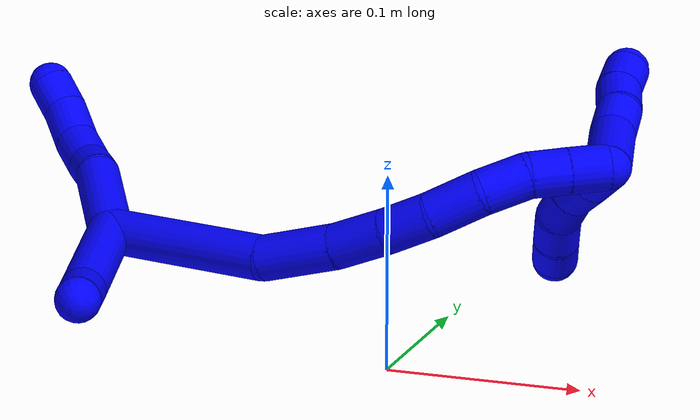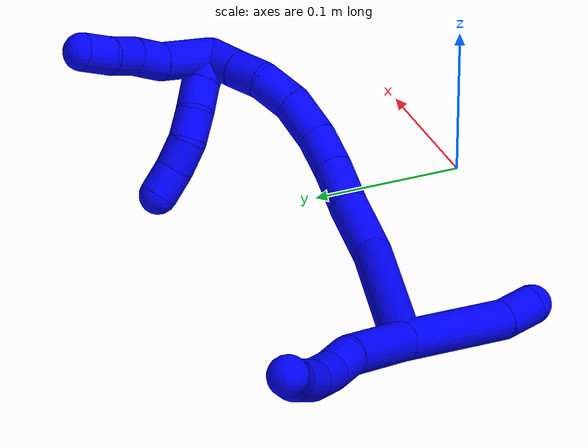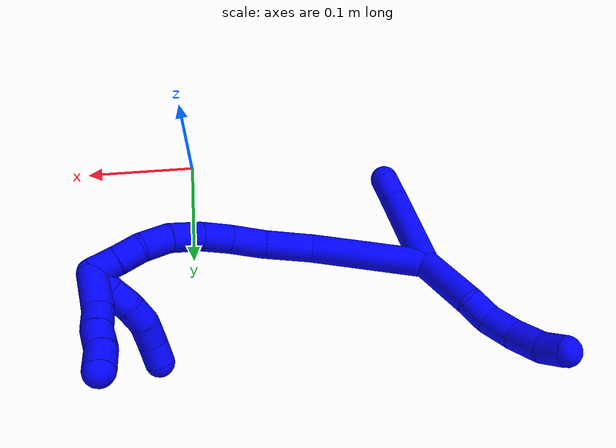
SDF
<sdf version="1.7">
 <world name="default">
  <model name="1">
   <static>0</static>
   <link name="1">
    <collision name="collision-cylinder-e_1_2_8">
     <pose>0.000116 -0.003127 0.028337 0.109904 0.004056 0.000223</pose>
     <geometry><cylinder><radius>0.0125</radius><length>0.057019</length></cylinder></geometry>
     <surface>
      <friction><ode><mu>1.16</mu><mu2>1.16</mu2><slip1>0</slip1><slip2>0</slip2></ode></friction>
      <contact><ode><kp>1e+06</kp><kd>1</kd><max_vel>0</max_vel><min_depth>0.001</min_depth></ode></contact>
     </surface>
    </collision>
    <visual name="visual-cylinder-e_1_2_8">
     <pose>0.000116 -0.003127 0.028337 0.109904 0.004056 0.000223</pose>
     <geometry><cylinder><radius>0.0125</radius><length>0.057019</length></cylinder></geometry>
     <material><ambient>0 0 1 1</ambient></material>
    </visual>
    <collision name="collision-cylinder-e_2_8_9">
     <pose>-0.002248 -0.005548 0.067047 -0.06798 -0.234077 0.007996</pose>
     <geometry><cylinder><radius>0.0125</radius><length>0.021377</length></cylinder></geometry>
     <surface>
      <friction><ode><mu>1.16</mu><mu2>1.16</mu2><slip1>0</slip1><slip2>0</slip2></ode></friction>
      <contact><ode><kp>1e+06</kp><kd>1</kd><max_vel>0</max_vel><min_depth>0.001</min_depth></ode></contact>
     </surface>
    </collision>
    <visual name="visual-cylinder-e_2_8_9">
     <pose>-0.002248 -0.005548 0.067047 -0.06798 -0.234077 0.007996</pose>
     <geometry><cylinder><radius>0.0125</radius><length>0.021377</length></cylinder></geometry>
     <material><ambient>0 0 1 1</ambient></material>
    </visual>
    <collision name="collision-cylinder-e_3_9_10">
     <pose>-0.006372 -0.007578 0.089479 0.223187 -0.132298 -0.014847</pose>
     <geometry><cylinder><radius>0.0125</radius><length>0.024949</length></cylinder></geometry>
     <surface>
      <friction><ode><mu>1.16</mu><mu2>1.16</mu2><slip1>0</slip1><slip2>0</slip2></ode></friction>
      <contact><ode><kp>1e+06</kp><kd>1</kd><max_vel>0</max_vel><min_depth>0.001</min_depth></ode></contact>
     </surface>
    </collision>
    <visual name="visual-cylinder-e_3_9_10">
     <pose>-0.006372 -0.007578 0.089479 0.223187 -0.132298 -0.014847</pose>
     <geometry><cylinder><radius>0.0125</radius><length>0.024949</length></cylinder></geometry>
     <material><ambient>0 0 1 1</ambient></material>
    </visual>
    <collision name="collision-cylinder-e_4_10_11">
     <pose>-0.007749 -0.015319 0.113801 0.387366 0.020342 0.00399</pose>
     <geometry><cylinder><radius>0.0125</radius><length>0.026495</length></cylinder></geometry>
     <surface>
      <friction><ode><mu>1.16</mu><mu2>1.16</mu2><slip1>0</slip1><slip2>0</slip2></ode></friction>
      <contact><ode><kp>1e+06</kp><kd>1</kd><max_vel>0</max_vel><min_depth>0.001</min_depth></ode></contact>
     </surface>
    </collision>
    <visual name="visual-cylinder-e_4_10_11">
     <pose>-0.007749 -0.015319 0.113801 0.387366 0.020342 0.00399</pose>
     <geometry><cylinder><radius>0.0125</radius><length>0.026495</length></cylinder></geometry>
     <material><ambient>0 0 1 1</ambient></material>
    </visual>
    <collision name="collision-cylinder-e_5_11_6">
     <pose>-0.00758 -0.026345 0.134146 0.640467 -0.010012 -0.00332</pose>
     <geometry><cylinder><radius>0.0125</radius><length>0.020161</length></cylinder></geometry>
     <surface>
      <friction><ode><mu>1.16</mu><mu2>1.16</mu2><slip1>0</slip1><slip2>0</slip2></ode></friction>
      <contact><ode><kp>1e+06</kp><kd>1</kd><max_vel>0</max_vel><min_depth>0.001</min_depth></ode></contact>
     </surface>
    </collision>
    <visual name="visual-cylinder-e_5_11_6">
     <pose>-0.00758 -0.026345 0.134146 0.640467 -0.010012 -0.00332</pose>
     <geometry><cylinder><radius>0.0125</radius><length>0.020161</length></cylinder></geometry>
     <material><ambient>0 0 1 1</ambient></material>
    </visual>
    <collision name="collision-cylinder-e_1_2_12">
     <pose>-0.006287 -0.007684 -0.036919 2.9364 -0.165208 -1.3545</pose>
     <geometry><cylinder><radius>0.0125</radius><length>0.07646</length></cylinder></geometry>
     <surface>
      <friction><ode><mu>1.16</mu><mu2>1.16</mu2><slip1>0</slip1><slip2>0</slip2></ode></friction>
      <contact><ode><kp>1e+06</kp><kd>1</kd><max_vel>0</max_vel><min_depth>0.001</min_depth></ode></contact>
     </surface>
    </collision>
    <visual name="visual-cylinder-e_1_2_12">
     <pose>-0.006287 -0.007684 -0.036919 2.9364 -0.165208 -1.3545</pose>
     <geometry><cylinder><radius>0.0125</radius><length>0.07646</length></cylinder></geometry>
     <material><ambient>0 0 1 1</ambient></material>
    </visual>
    <collision name="collision-cylinder-e_2_12_5">
     <pose>-0.012194 -0.019159 -0.084973 2.81345 0.032369 0.194907</pose>
     <geometry><cylinder><radius>0.0125</radius><length>0.02354</length></cylinder></geometry>
     <surface>
      <friction><ode><mu>1.16</mu><mu2>1.16</mu2><slip1>0</slip1><slip2>0</slip2></ode></friction>
      <contact><ode><kp>1e+06</kp><kd>1</kd><max_vel>0</max_vel><min_depth>0.001</min_depth></ode></contact>
     </surface>
    </collision>
    <visual name="visual-cylinder-e_2_12_5">
     <pose>-0.012194 -0.019159 -0.084973 2.81345 0.032369 0.194907</pose>
     <geometry><cylinder><radius>0.0125</radius><length>0.02354</length></cylinder></geometry>
     <material><ambient>0 0 1 1</ambient></material>
    </visual>
    <collision name="collision-cylinder-e_1_2_13">
     <pose>0.035361 0.017645 -0.031536 -2.63147 0.77455 -2.004</pose>
     <geometry><cylinder><radius>0.0125</radius><length>0.101119</length></cylinder></geometry>
     <surface>
      <friction><ode><mu>1.16</mu><mu2>1.16</mu2><slip1>0</slip1><slip2>0</slip2></ode></friction>
      <contact><ode><kp>1e+06</kp><kd>1</kd><max_vel>0</max_vel><min_depth>0.001</min_depth></ode></contact>
     </surface>
    </collision>
    <visual name="visual-cylinder-e_1_2_13">
     <pose>0.035361 0.017645 -0.031536 -2.63147 0.77455 -2.004</pose>
     <geometry><cylinder><radius>0.0125</radius><length>0.101119</length></cylinder></geometry>
     <material><ambient>0 0 1 1</ambient></material>
    </visual>
    <collision name="collision-cylinder-e_2_13_14">
     <pose>0.090005 0.040234 -0.071702 -2.62135 1.09457 -2.31802</pose>
     <geometry><cylinder><radius>0.0125</radius><length>0.043394</length></cylinder></geometry>
     <surface>
      <friction><ode><mu>1.16</mu><mu2>1.16</mu2><slip1>0</slip1><slip2>0</slip2></ode></friction>
      <contact><ode><kp>1e+06</kp><kd>1</kd><max_vel>0</max_vel><min_depth>0.001</min_depth></ode></contact>
     </surface>
    </collision>
    <visual name="visual-cylinder-e_2_13_14">
     <pose>0.090005 0.040234 -0.071702 -2.62135 1.09457 -2.31802</pose>
     <geometry><cylinder><radius>0.0125</radius><length>0.043394</length></cylinder></geometry>
     <material><ambient>0 0 1 1</ambient></material>
    </visual>
    <collision name="collision-cylinder-e_3_14_15">
     <pose>0.123573 0.047022 -0.085902 -2.822 1.18115 -2.66972</pose>
     <geometry><cylinder><radius>0.0125</radius><length>0.030886</length></cylinder></geometry>
     <surface>
      <friction><ode><mu>1.16</mu><mu2>1.16</mu2><slip1>0</slip1><slip2>0</slip2></ode></friction>
      <contact><ode><kp>1e+06</kp><kd>1</kd><max_vel>0</max_vel><min_depth>0.001</min_depth></ode></contact>
     </surface>
    </collision>
    <visual name="visual-cylinder-e_3_14_15">
     <pose>0.123573 0.047022 -0.085902 -2.822 1.18115 -2.66972</pose>
     <geometry><cylinder><radius>0.0125</radius><length>0.030886</length></cylinder></geometry>
     <material><ambient>0 0 1 1</ambient></material>
    </visual>
    <collision name="collision-cylinder-e_4_15_16">
     <pose>0.150436 0.050444 -0.094978 -2.71842 1.27405 -2.57652</pose>
     <geometry><cylinder><radius>0.0125</radius><length>0.026306</length></cylinder></geometry>
     <surface>
      <friction><ode><mu>1.16</mu><mu2>1.16</mu2><slip1>0</slip1><slip2>0</slip2></ode></friction>
      <contact><ode><kp>1e+06</kp><kd>1</kd><max_vel>0</max_vel><min_depth>0.001</min_depth></ode></contact>
     </surface>
    </collision>
    <visual name="visual-cylinder-e_4_15_16">
     <pose>0.150436 0.050444 -0.094978 -2.71842 1.27405 -2.57652</pose>
     <geometry><cylinder><radius>0.0125</radius><length>0.026306</length></cylinder></geometry>
     <material><ambient>0 0 1 1</ambient></material>
    </visual>
    <collision name="collision-cylinder-e_5_16_17">
     <pose>0.177363 0.054206 -0.099742 -2.09346 1.39701 -1.93596</pose>
     <geometry><cylinder><radius>0.0125</radius><length>0.029136</length></cylinder></geometry>
     <surface>
      <friction><ode><mu>1.16</mu><mu2>1.16</mu2><slip1>0</slip1><slip2>0</slip2></ode></friction>
      <contact><ode><kp>1e+06</kp><kd>1</kd><max_vel>0</max_vel><min_depth>0.001</min_depth></ode></contact>
     </surface>
    </collision>
    <visual name="visual-cylinder-e_5_16_17">
     <pose>0.177363 0.054206 -0.099742 -2.09346 1.39701 -1.93596</pose>
     <geometry><cylinder><radius>0.0125</radius><length>0.029136</length></cylinder></geometry>
     <material><ambient>0 0 1 1</ambient></material>
    </visual>
    <collision name="collision-cylinder-e_6_17_18">
     <pose>0.203876 0.060603 -0.099667 -1.26456 1.2223 -0.948444</pose>
     <geometry><cylinder><radius>0.0125</radius><length>0.025885</length></cylinder></geometry>
     <surface>
      <friction><ode><mu>1.16</mu><mu2>1.16</mu2><slip1>0</slip1><slip2>0</slip2></ode></friction>
      <contact><ode><kp>1e+06</kp><kd>1</kd><max_vel>0</max_vel><min_depth>0.001</min_depth></ode></contact>
     </surface>
    </collision>
    <visual name="visual-cylinder-e_6_17_18">
     <pose>0.203876 0.060603 -0.099667 -1.26456 1.2223 -0.948444</pose>
     <geometry><cylinder><radius>0.0125</radius><length>0.025885</length></cylinder></geometry>
     <material><ambient>0 0 1 1</ambient></material>
    </visual>
    <collision name="collision-cylinder-e_7_18_19">
     <pose>0.224932 0.070893 -0.097374 -1.41393 0.965619 -0.842037</pose>
     <geometry><cylinder><radius>0.0125</radius><length>0.021624</length></cylinder></geometry>
     <surface>
      <friction><ode><mu>1.16</mu><mu2>1.16</mu2><slip1>0</slip1><slip2>0</slip2></ode></friction>
      <contact><ode><kp>1e+06</kp><kd>1</kd><max_vel>0</max_vel><min_depth>0.001</min_depth></ode></contact>
     </surface>
    </collision>
    <visual name="visual-cylinder-e_7_18_19">
     <pose>0.224932 0.070893 -0.097374 -1.41393 0.965619 -0.842037</pose>
     <geometry><cylinder><radius>0.0125</radius><length>0.021624</length></cylinder></geometry>
     <material><ambient>0 0 1 1</ambient></material>
    </visual>
    <collision name="collision-cylinder-e_8_19_1">
     <pose>0.242823 0.082972 -0.096028 -1.50679 0.981498 -0.929208</pose>
     <geometry><cylinder><radius>0.0125</radius><length>0.021651</length></cylinder></geometry>
     <surface>
      <friction><ode><mu>1.16</mu><mu2>1.16</mu2><slip1>0</slip1><slip2>0</slip2></ode></friction>
      <contact><ode><kp>1e+06</kp><kd>1</kd><max_vel>0</max_vel><min_depth>0.001</min_depth></ode></contact>
     </surface>
    </collision>
    <visual name="visual-cylinder-e_8_19_1">
     <pose>0.242823 0.082972 -0.096028 -1.50679 0.981498 -0.929208</pose>
     <geometry><cylinder><radius>0.0125</radius><length>0.021651</length></cylinder></geometry>
     <material><ambient>0 0 1 1</ambient></material>
    </visual>
    <collision name="collision-cylinder-e_1_1_20">
     <pose>0.255507 0.091993 -0.07668 -0.15775 0.189577 -0.015029</pose>
     <geometry><cylinder><radius>0.0125</radius><length>0.039104</length></cylinder></geometry>
     <surface>
      <friction><ode><mu>1.16</mu><mu2>1.16</mu2><slip1>0</slip1><slip2>0</slip2></ode></friction>
      <contact><ode><kp>1e+06</kp><kd>1</kd><max_vel>0</max_vel><min_depth>0.001</min_depth></ode></contact>
     </surface>
    </collision>
    <visual name="visual-cylinder-e_1_1_20">
     <pose>0.255507 0.091993 -0.07668 -0.15775 0.189577 -0.015029</pose>
     <geometry><cylinder><radius>0.0125</radius><length>0.039104</length></cylinder></geometry>
     <material><ambient>0 0 1 1</ambient></material>
    </visual>
    <collision name="collision-cylinder-e_2_20_21">
     <pose>0.263395 0.095235 -0.048204 -0.023659 0.415966 -0.004993</pose>
     <geometry><cylinder><radius>0.0125</radius><length>0.020804</length></cylinder></geometry>
     <surface>
      <friction><ode><mu>1.16</mu><mu2>1.16</mu2><slip1>0</slip1><slip2>0</slip2></ode></friction>
      <contact><ode><kp>1e+06</kp><kd>1</kd><max_vel>0</max_vel><min_depth>0.001</min_depth></ode></contact>
     </surface>
    </collision>
    <visual name="visual-cylinder-e_2_20_21">
     <pose>0.263395 0.095235 -0.048204 -0.023659 0.415966 -0.004993</pose>
     <geometry><cylinder><radius>0.0125</radius><length>0.020804</length></cylinder></geometry>
     <material><ambient>0 0 1 1</ambient></material>
    </visual>
    <collision name="collision-cylinder-e_3_21_22">
     <pose>0.269591 0.095481 -0.028857 -0.002185 0.1999 -0.000219</pose>
     <geometry><cylinder><radius>0.0125</radius><length>0.020069</length></cylinder></geometry>
     <surface>
      <friction><ode><mu>1.16</mu><mu2>1.16</mu2><slip1>0</slip1><slip2>0</slip2></ode></friction>
      <contact><ode><kp>1e+06</kp><kd>1</kd><max_vel>0</max_vel><min_depth>0.001</min_depth></ode></contact>
     </surface>
    </collision>
    <visual name="visual-cylinder-e_3_21_22">
     <pose>0.269591 0.095481 -0.028857 -0.002185 0.1999 -0.000219</pose>
     <geometry><cylinder><radius>0.0125</radius><length>0.020069</length></cylinder></geometry>
     <material><ambient>0 0 1 1</ambient></material>
    </visual>
    <collision name="collision-cylinder-e_4_22_4">
     <pose>0.27561 0.096577 -0.00992 -0.117534 0.413981 -0.024709</pose>
     <geometry><cylinder><radius>0.0125</radius><length>0.020023</length></cylinder></geometry>
     <surface>
      <friction><ode><mu>1.16</mu><mu2>1.16</mu2><slip1>0</slip1><slip2>0</slip2></ode></friction>
      <contact><ode><kp>1e+06</kp><kd>1</kd><max_vel>0</max_vel><min_depth>0.001</min_depth></ode></contact>
     </surface>
    </collision>
    <visual name="visual-cylinder-e_4_22_4">
     <pose>0.27561 0.096577 -0.00992 -0.117534 0.413981 -0.024709</pose>
     <geometry><cylinder><radius>0.0125</radius><length>0.020023</length></cylinder></geometry>
     <material><ambient>0 0 1 1</ambient></material>
    </visual>
    <collision name="collision-cylinder-e_1_1_23">
     <pose>0.245299 0.09308 -0.089271 -0.572122 -0.710684 0.217438</pose>
     <geometry><cylinder><radius>0.0125</radius><length>0.02</length></cylinder></geometry>
     <surface>
      <friction><ode><mu>1.16</mu><mu2>1.16</mu2><slip1>0</slip1><slip2>0</slip2></ode></friction>
      <contact><ode><kp>1e+06</kp><kd>1</kd><max_vel>0</max_vel><min_depth>0.001</min_depth></ode></contact>
     </surface>
    </collision>
    <visual name="visual-cylinder-e_1_1_23">
     <pose>0.245299 0.09308 -0.089271 -0.572122 -0.710684 0.217438</pose>
     <geometry><cylinder><radius>0.0125</radius><length>0.02</length></cylinder></geometry>
     <material><ambient>0 0 1 1</ambient></material>
    </visual>
    <collision name="collision-cylinder-e_2_23_24">
     <pose>0.231265 0.100611 -0.077256 -0.545897 -0.84972 0.251952</pose>
     <geometry><cylinder><radius>0.0125</radius><length>0.02</length></cylinder></geometry>
     <surface>
      <friction><ode><mu>1.16</mu><mu2>1.16</mu2><slip1>0</slip1><slip2>0</slip2></ode></friction>
      <contact><ode><kp>1e+06</kp><kd>1</kd><max_vel>0</max_vel><min_depth>0.001</min_depth></ode></contact>
     </surface>
    </collision>
    <visual name="visual-cylinder-e_2_23_24">
     <pose>0.231265 0.100611 -0.077256 -0.545897 -0.84972 0.251952</pose>
     <geometry><cylinder><radius>0.0125</radius><length>0.02</length></cylinder></geometry>
     <material><ambient>0 0 1 1</ambient></material>
    </visual>
    <collision name="collision-cylinder-e_3_24_25">
     <pose>0.216749 0.109592 -0.067132 -0.89171 -0.776144 0.385915</pose>
     <geometry><cylinder><radius>0.0125</radius><length>0.02</length></cylinder></geometry>
     <surface>
      <friction><ode><mu>1.16</mu><mu2>1.16</mu2><slip1>0</slip1><slip2>0</slip2></ode></friction>
      <contact><ode><kp>1e+06</kp><kd>1</kd><max_vel>0</max_vel><min_depth>0.001</min_depth></ode></contact>
     </surface>
    </collision>
    <visual name="visual-cylinder-e_3_24_25">
     <pose>0.216749 0.109592 -0.067132 -0.89171 -0.776144 0.385915</pose>
     <geometry><cylinder><radius>0.0125</radius><length>0.02</length></cylinder></geometry>
     <material><ambient>0 0 1 1</ambient></material>
    </visual>
    <collision name="collision-cylinder-e_4_25_26">
     <pose>0.204679 0.122888 -0.058855 -1.11515 -0.531017 0.335943</pose>
     <geometry><cylinder><radius>0.0125</radius><length>0.02</length></cylinder></geometry>
     <surface>
      <friction><ode><mu>1.16</mu><mu2>1.16</mu2><slip1>0</slip1><slip2>0</slip2></ode></friction>
      <contact><ode><kp>1e+06</kp><kd>1</kd><max_vel>0</max_vel><min_depth>0.001</min_depth></ode></contact>
     </surface>
    </collision>
    <visual name="visual-cylinder-e_4_25_26">
     <pose>0.204679 0.122888 -0.058855 -1.11515 -0.531017 0.335943</pose>
     <geometry><cylinder><radius>0.0125</radius><length>0.02</length></cylinder></geometry>
     <material><ambient>0 0 1 1</ambient></material>
    </visual>
    <collision name="collision-cylinder-e_5_26_3">
     <pose>0.195243 0.138125 -0.050088 -0.984932 -0.452529 0.245794</pose>
     <geometry><cylinder><radius>0.0125</radius><length>0.02</length></cylinder></geometry>
     <surface>
      <friction><ode><mu>1.16</mu><mu2>1.16</mu2><slip1>0</slip1><slip2>0</slip2></ode></friction>
      <contact><ode><kp>1e+06</kp><kd>1</kd><max_vel>0</max_vel><min_depth>0.001</min_depth></ode></contact>
     </surface>
    </collision>
    <visual name="visual-cylinder-e_5_26_3">
     <pose>0.195243 0.138125 -0.050088 -0.984932 -0.452529 0.245794</pose>
     <geometry><cylinder><radius>0.0125</radius><length>0.02</length></cylinder></geometry>
     <material><ambient>0 0 1 1</ambient></material>
    </visual>
    <collision name="collision-sphere-3">
     <pose>0.19087 0.145618 -0.045115 0 -0 0</pose>
     <geometry><sphere><radius>0.0125</radius></sphere></geometry>
     <surface>
      <friction><ode><mu>1.16</mu><mu2>1.16</mu2><slip1>0</slip1><slip2>0</slip2></ode></friction>
      <contact><ode><kp>1e+06</kp><kd>1</kd><max_vel>0</max_vel><min_depth>0.001</min_depth></ode></contact>
     </surface>
    </collision>
    <visual name="visual-sphere-3">
     <pose>0.19087 0.145618 -0.045115 0 -0 0</pose>
     <geometry><sphere><radius>0.0125</radius></sphere></geometry>
     <material><ambient>0 0 1 1</ambient></material>
    </visual>
    <collision name="collision-sphere-26">
     <pose>0.199615 0.130631 -0.055061 0 -0 0</pose>
     <geometry><sphere><radius>0.0125</radius></sphere></geometry>
     <surface>
      <friction><ode><mu>1.16</mu><mu2>1.16</mu2><slip1>0</slip1><slip2>0</slip2></ode></friction>
      <contact><ode><kp>1e+06</kp><kd>1</kd><max_vel>0</max_vel><min_depth>0.001</min_depth></ode></contact>
     </surface>
    </collision>
    <visual name="visual-sphere-26">
     <pose>0.199615 0.130631 -0.055061 0 -0 0</pose>
     <geometry><sphere><radius>0.0125</radius></sphere></geometry>
     <material><ambient>0 0 1 1</ambient></material>
    </visual>
    <collision name="collision-sphere-25">
     <pose>0.209743 0.115145 -0.062649 0 -0 0</pose>
     <geometry><sphere><radius>0.0125</radius></sphere></geometry>
     <surface>
      <friction><ode><mu>1.16</mu><mu2>1.16</mu2><slip1>0</slip1><slip2>0</slip2></ode></friction>
      <contact><ode><kp>1e+06</kp><kd>1</kd><max_vel>0</max_vel><min_depth>0.001</min_depth></ode></contact>
     </surface>
    </collision>
    <visual name="visual-sphere-25">
     <pose>0.209743 0.115145 -0.062649 0 -0 0</pose>
     <geometry><sphere><radius>0.0125</radius></sphere></geometry>
     <material><ambient>0 0 1 1</ambient></material>
    </visual>
    <collision name="collision-sphere-24">
     <pose>0.223754 0.104039 -0.071614 0 -0 0</pose>
     <geometry><sphere><radius>0.0125</radius></sphere></geometry>
     <surface>
      <friction><ode><mu>1.16</mu><mu2>1.16</mu2><slip1>0</slip1><slip2>0</slip2></ode></friction>
      <contact><ode><kp>1e+06</kp><kd>1</kd><max_vel>0</max_vel><min_depth>0.001</min_depth></ode></contact>
     </surface>
    </collision>
    <visual name="visual-sphere-24">
     <pose>0.223754 0.104039 -0.071614 0 -0 0</pose>
     <geometry><sphere><radius>0.0125</radius></sphere></geometry>
     <material><ambient>0 0 1 1</ambient></material>
    </visual>
    <collision name="collision-sphere-23">
     <pose>0.238776 0.097183 -0.082899 0 -0 0</pose>
     <geometry><sphere><radius>0.0125</radius></sphere></geometry>
     <surface>
      <friction><ode><mu>1.16</mu><mu2>1.16</mu2><slip1>0</slip1><slip2>0</slip2></ode></friction>
      <contact><ode><kp>1e+06</kp><kd>1</kd><max_vel>0</max_vel><min_depth>0.001</min_depth></ode></contact>
     </surface>
    </collision>
    <visual name="visual-sphere-23">
     <pose>0.238776 0.097183 -0.082899 0 -0 0</pose>
     <geometry><sphere><radius>0.0125</radius></sphere></geometry>
     <material><ambient>0 0 1 1</ambient></material>
    </visual>
    <collision name="collision-sphere-4">
     <pose>0.279638 0.097652 -0.000817 0 -0 0</pose>
     <geometry><sphere><radius>0.0125</radius></sphere></geometry>
     <surface>
      <friction><ode><mu>1.16</mu><mu2>1.16</mu2><slip1>0</slip1><slip2>0</slip2></ode></friction>
      <contact><ode><kp>1e+06</kp><kd>1</kd><max_vel>0</max_vel><min_depth>0.001</min_depth></ode></contact>
     </surface>
    </collision>
    <visual name="visual-sphere-4">
     <pose>0.279638 0.097652 -0.000817 0 -0 0</pose>
     <geometry><sphere><radius>0.0125</radius></sphere></geometry>
     <material><ambient>0 0 1 1</ambient></material>
    </visual>
    <collision name="collision-sphere-22">
     <pose>0.271583 0.095503 -0.019023 0 -0 0</pose>
     <geometry><sphere><radius>0.0125</radius></sphere></geometry>
     <surface>
      <friction><ode><mu>1.16</mu><mu2>1.16</mu2><slip1>0</slip1><slip2>0</slip2></ode></friction>
      <contact><ode><kp>1e+06</kp><kd>1</kd><max_vel>0</max_vel><min_depth>0.001</min_depth></ode></contact>
     </surface>
    </collision>
    <visual name="visual-sphere-22">
     <pose>0.271583 0.095503 -0.019023 0 -0 0</pose>
     <geometry><sphere><radius>0.0125</radius></sphere></geometry>
     <material><ambient>0 0 1 1</ambient></material>
    </visual>
    <collision name="collision-sphere-21">
     <pose>0.267598 0.09546 -0.038692 0 -0 0</pose>
     <geometry><sphere><radius>0.0125</radius></sphere></geometry>
     <surface>
      <friction><ode><mu>1.16</mu><mu2>1.16</mu2><slip1>0</slip1><slip2>0</slip2></ode></friction>
      <contact><ode><kp>1e+06</kp><kd>1</kd><max_vel>0</max_vel><min_depth>0.001</min_depth></ode></contact>
     </surface>
    </collision>
    <visual name="visual-sphere-21">
     <pose>0.267598 0.09546 -0.038692 0 -0 0</pose>
     <geometry><sphere><radius>0.0125</radius></sphere></geometry>
     <material><ambient>0 0 1 1</ambient></material>
    </visual>
    <collision name="collision-sphere-20">
     <pose>0.259192 0.095009 -0.057716 0 -0 0</pose>
     <geometry><sphere><radius>0.0125</radius></sphere></geometry>
     <surface>
      <friction><ode><mu>1.16</mu><mu2>1.16</mu2><slip1>0</slip1><slip2>0</slip2></ode></friction>
      <contact><ode><kp>1e+06</kp><kd>1</kd><max_vel>0</max_vel><min_depth>0.001</min_depth></ode></contact>
     </surface>
    </collision>
    <visual name="visual-sphere-20">
     <pose>0.259192 0.095009 -0.057716 0 -0 0</pose>
     <geometry><sphere><radius>0.0125</radius></sphere></geometry>
     <material><ambient>0 0 1 1</ambient></material>
    </visual>
    <collision name="collision-sphere-6">
     <pose>-0.007681 -0.032369 0.142229 0 -0 0</pose>
     <geometry><sphere><radius>0.0125</radius></sphere></geometry>
     <surface>
      <friction><ode><mu>1.16</mu><mu2>1.16</mu2><slip1>0</slip1><slip2>0</slip2></ode></friction>
      <contact><ode><kp>1e+06</kp><kd>1</kd><max_vel>0</max_vel><min_depth>0.001</min_depth></ode></contact>
     </surface>
    </collision>
    <visual name="visual-sphere-6">
     <pose>-0.007681 -0.032369 0.142229 0 -0 0</pose>
     <geometry><sphere><radius>0.0125</radius></sphere></geometry>
     <material><ambient>0 0 1 1</ambient></material>
    </visual>
    <collision name="collision-sphere-11">
     <pose>-0.007479 -0.020322 0.126064 0 -0 0</pose>
     <geometry><sphere><radius>0.0125</radius></sphere></geometry>
     <surface>
      <friction><ode><mu>1.16</mu><mu2>1.16</mu2><slip1>0</slip1><slip2>0</slip2></ode></friction>
      <contact><ode><kp>1e+06</kp><kd>1</kd><max_vel>0</max_vel><min_depth>0.001</min_depth></ode></contact>
     </surface>
    </collision>
    <visual name="visual-sphere-11">
     <pose>-0.007479 -0.020322 0.126064 0 -0 0</pose>
     <geometry><sphere><radius>0.0125</radius></sphere></geometry>
     <material><ambient>0 0 1 1</ambient></material>
    </visual>
    <collision name="collision-sphere-10">
     <pose>-0.008018 -0.010315 0.101537 0 -0 0</pose>
     <geometry><sphere><radius>0.0125</radius></sphere></geometry>
     <surface>
      <friction><ode><mu>1.16</mu><mu2>1.16</mu2><slip1>0</slip1><slip2>0</slip2></ode></friction>
      <contact><ode><kp>1e+06</kp><kd>1</kd><max_vel>0</max_vel><min_depth>0.001</min_depth></ode></contact>
     </surface>
    </collision>
    <visual name="visual-sphere-10">
     <pose>-0.008018 -0.010315 0.101537 0 -0 0</pose>
     <geometry><sphere><radius>0.0125</radius></sphere></geometry>
     <material><ambient>0 0 1 1</ambient></material>
    </visual>
    <collision name="collision-sphere-9">
     <pose>-0.004727 -0.004841 0.07742 0 -0 0</pose>
     <geometry><sphere><radius>0.0125</radius></sphere></geometry>
     <surface>
      <friction><ode><mu>1.16</mu><mu2>1.16</mu2><slip1>0</slip1><slip2>0</slip2></ode></friction>
      <contact><ode><kp>1e+06</kp><kd>1</kd><max_vel>0</max_vel><min_depth>0.001</min_depth></ode></contact>
     </surface>
    </collision>
    <visual name="visual-sphere-9">
     <pose>-0.004727 -0.004841 0.07742 0 -0 0</pose>
     <geometry><sphere><radius>0.0125</radius></sphere></geometry>
     <material><ambient>0 0 1 1</ambient></material>
    </visual>
    <collision name="collision-sphere-2">
     <geometry><sphere><radius>0.0125</radius></sphere></geometry>
     <surface>
      <friction><ode><mu>1.16</mu><mu2>1.16</mu2><slip1>0</slip1><slip2>0</slip2></ode></friction>
      <contact><ode><kp>1e+06</kp><kd>1</kd><max_vel>0</max_vel><min_depth>0.001</min_depth></ode></contact>
     </surface>
    </collision>
    <visual name="visual-sphere-2">
     <geometry><sphere><radius>0.0125</radius></sphere></geometry>
     <material><ambient>0 0 1 1</ambient></material>
    </visual>
    <collision name="collision-sphere-19">
     <pose>0.233824 0.076968 -0.096413 0 -0 0</pose>
     <geometry><sphere><radius>0.0125</radius></sphere></geometry>
     <surface>
      <friction><ode><mu>1.16</mu><mu2>1.16</mu2><slip1>0</slip1><slip2>0</slip2></ode></friction>
      <contact><ode><kp>1e+06</kp><kd>1</kd><max_vel>0</max_vel><min_depth>0.001</min_depth></ode></contact>
     </surface>
    </collision>
    <visual name="visual-sphere-19">
     <pose>0.233824 0.076968 -0.096413 0 -0 0</pose>
     <geometry><sphere><radius>0.0125</radius></sphere></geometry>
     <material><ambient>0 0 1 1</ambient></material>
    </visual>
    <collision name="collision-sphere-8">
     <pose>0.000231 -0.006254 0.056674 0 -0 0</pose>
     <geometry><sphere><radius>0.0125</radius></sphere></geometry>
     <surface>
      <friction><ode><mu>1.16</mu><mu2>1.16</mu2><slip1>0</slip1><slip2>0</slip2></ode></friction>
      <contact><ode><kp>1e+06</kp><kd>1</kd><max_vel>0</max_vel><min_depth>0.001</min_depth></ode></contact>
     </surface>
    </collision>
    <visual name="visual-sphere-8">
     <pose>0.000231 -0.006254 0.056674 0 -0 0</pose>
     <geometry><sphere><radius>0.0125</radius></sphere></geometry>
     <material><ambient>0 0 1 1</ambient></material>
    </visual>
    <collision name="collision-sphere-12">
     <pose>-0.012575 -0.015367 -0.073837 0 -0 0</pose>
     <geometry><sphere><radius>0.0125</radius></sphere></geometry>
     <surface>
      <friction><ode><mu>1.16</mu><mu2>1.16</mu2><slip1>0</slip1><slip2>0</slip2></ode></friction>
      <contact><ode><kp>1e+06</kp><kd>1</kd><max_vel>0</max_vel><min_depth>0.001</min_depth></ode></contact>
     </surface>
    </collision>
    <visual name="visual-sphere-12">
     <pose>-0.012575 -0.015367 -0.073837 0 -0 0</pose>
     <geometry><sphere><radius>0.0125</radius></sphere></geometry>
     <material><ambient>0 0 1 1</ambient></material>
    </visual>
    <collision name="collision-sphere-5">
     <pose>-0.011813 -0.02295 -0.096109 0 -0 0</pose>
     <geometry><sphere><radius>0.0125</radius></sphere></geometry>
     <surface>
      <friction><ode><mu>1.16</mu><mu2>1.16</mu2><slip1>0</slip1><slip2>0</slip2></ode></friction>
      <contact><ode><kp>1e+06</kp><kd>1</kd><max_vel>0</max_vel><min_depth>0.001</min_depth></ode></contact>
     </surface>
    </collision>
    <visual name="visual-sphere-5">
     <pose>-0.011813 -0.02295 -0.096109 0 -0 0</pose>
     <geometry><sphere><radius>0.0125</radius></sphere></geometry>
     <material><ambient>0 0 1 1</ambient></material>
    </visual>
    <collision name="collision-sphere-13">
     <pose>0.070722 0.03529 -0.063072 0 -0 0</pose>
     <geometry><sphere><radius>0.0125</radius></sphere></geometry>
     <surface>
      <friction><ode><mu>1.16</mu><mu2>1.16</mu2><slip1>0</slip1><slip2>0</slip2></ode></friction>
      <contact><ode><kp>1e+06</kp><kd>1</kd><max_vel>0</max_vel><min_depth>0.001</min_depth></ode></contact>
     </surface>
    </collision>
    <visual name="visual-sphere-13">
     <pose>0.070722 0.03529 -0.063072 0 -0 0</pose>
     <geometry><sphere><radius>0.0125</radius></sphere></geometry>
     <material><ambient>0 0 1 1</ambient></material>
    </visual>
    <collision name="collision-sphere-14">
     <pose>0.109288 0.045179 -0.080333 0 -0 0</pose>
     <geometry><sphere><radius>0.0125</radius></sphere></geometry>
     <surface>
      <friction><ode><mu>1.16</mu><mu2>1.16</mu2><slip1>0</slip1><slip2>0</slip2></ode></friction>
      <contact><ode><kp>1e+06</kp><kd>1</kd><max_vel>0</max_vel><min_depth>0.001</min_depth></ode></contact>
     </surface>
    </collision>
    <visual name="visual-sphere-14">
     <pose>0.109288 0.045179 -0.080333 0 -0 0</pose>
     <geometry><sphere><radius>0.0125</radius></sphere></geometry>
     <material><ambient>0 0 1 1</ambient></material>
    </visual>
    <collision name="collision-sphere-15">
     <pose>0.137858 0.048865 -0.091471 0 -0 0</pose>
     <geometry><sphere><radius>0.0125</radius></sphere></geometry>
     <surface>
      <friction><ode><mu>1.16</mu><mu2>1.16</mu2><slip1>0</slip1><slip2>0</slip2></ode></friction>
      <contact><ode><kp>1e+06</kp><kd>1</kd><max_vel>0</max_vel><min_depth>0.001</min_depth></ode></contact>
     </surface>
    </collision>
    <visual name="visual-sphere-15">
     <pose>0.137858 0.048865 -0.091471 0 -0 0</pose>
     <geometry><sphere><radius>0.0125</radius></sphere></geometry>
     <material><ambient>0 0 1 1</ambient></material>
    </visual>
    <collision name="collision-sphere-16">
     <pose>0.163014 0.052024 -0.098484 0 -0 0</pose>
     <geometry><sphere><radius>0.0125</radius></sphere></geometry>
     <surface>
      <friction><ode><mu>1.16</mu><mu2>1.16</mu2><slip1>0</slip1><slip2>0</slip2></ode></friction>
      <contact><ode><kp>1e+06</kp><kd>1</kd><max_vel>0</max_vel><min_depth>0.001</min_depth></ode></contact>
     </surface>
    </collision>
    <visual name="visual-sphere-16">
     <pose>0.163014 0.052024 -0.098484 0 -0 0</pose>
     <geometry><sphere><radius>0.0125</radius></sphere></geometry>
     <material><ambient>0 0 1 1</ambient></material>
    </visual>
    <collision name="collision-sphere-17">
     <pose>0.191711 0.056389 -0.100999 0 -0 0</pose>
     <geometry><sphere><radius>0.0125</radius></sphere></geometry>
     <surface>
      <friction><ode><mu>1.16</mu><mu2>1.16</mu2><slip1>0</slip1><slip2>0</slip2></ode></friction>
      <contact><ode><kp>1e+06</kp><kd>1</kd><max_vel>0</max_vel><min_depth>0.001</min_depth></ode></contact>
     </surface>
    </collision>
    <visual name="visual-sphere-17">
     <pose>0.191711 0.056389 -0.100999 0 -0 0</pose>
     <geometry><sphere><radius>0.0125</radius></sphere></geometry>
     <material><ambient>0 0 1 1</ambient></material>
    </visual>
    <collision name="collision-sphere-18">
     <pose>0.216041 0.064817 -0.098335 0 -0 0</pose>
     <geometry><sphere><radius>0.0125</radius></sphere></geometry>
     <surface>
      <friction><ode><mu>1.16</mu><mu2>1.16</mu2><slip1>0</slip1><slip2>0</slip2></ode></friction>
      <contact><ode><kp>1e+06</kp><kd>1</kd><max_vel>0</max_vel><min_depth>0.001</min_depth></ode></contact>
     </surface>
    </collision>
    <visual name="visual-sphere-18">
     <pose>0.216041 0.064817 -0.098335 0 -0 0</pose>
     <geometry><sphere><radius>0.0125</radius></sphere></geometry>
     <material><ambient>0 0 1 1</ambient></material>
    </visual>
    <collision name="collision-sphere-1">
     <pose>0.251823 0.088976 -0.095643 0 -0 0</pose>
     <geometry><sphere><radius>0.0125</radius></sphere></geometry>
     <surface>
      <friction><ode><mu>1.16</mu><mu2>1.16</mu2><slip1>0</slip1><slip2>0</slip2></ode></friction>
      <contact><ode><kp>1e+06</kp><kd>1</kd><max_vel>0</max_vel><min_depth>0.001</min_depth></ode></contact>
     </surface>
    </collision>
    <visual name="visual-sphere-1">
     <pose>0.251823 0.088976 -0.095643 0 -0 0</pose>
     <geometry><sphere><radius>0.0125</radius></sphere></geometry>
     <material><ambient>0 0 1 1</ambient></material>
    </visual>
    <inertial>
     <pose>0.110346 0.041387 -0.035434 0 -0 0</pose>
     <mass>0.75</mass>
     <inertia>
      <ixx>-6.4e-05</ixx>
      <ixy>0</ixy>
      <ixz>0</ixz>
      <iyy>2.1e-05</iyy>
      <iyz>0</iyz>
      <izz>-9.8e-05</izz>
     </inertia>
    </inertial>
   </link>
   <pose>-0.204565 0.129062 0.02037 -1.28729 -0.624164 0.296211</pose>
  </model>
 </world>
</sdf>
